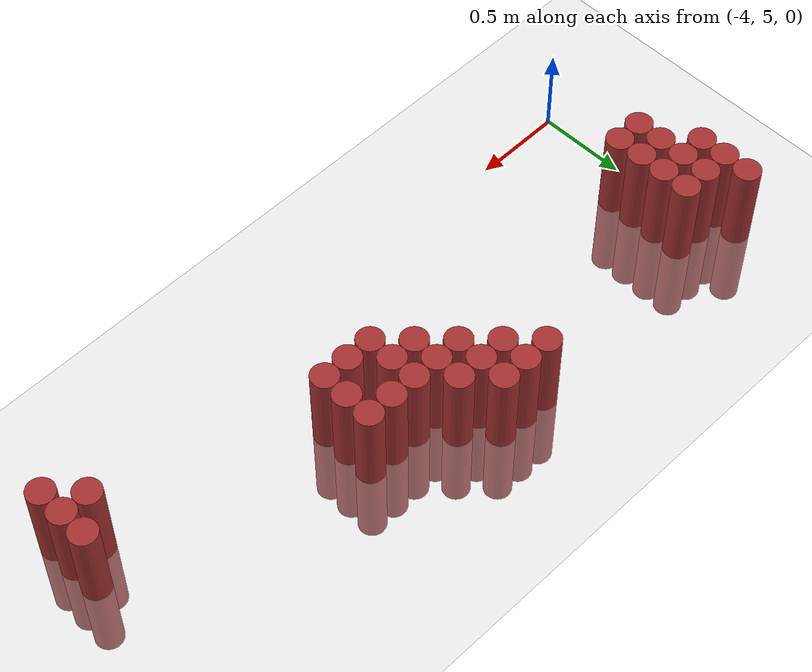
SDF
<sdf version="1.6">
 <world name="default">
  <model name="ground_plane">
   <static>1</static>
   <link name="link">
    <collision name="collision">
     <geometry><plane><normal>0 0 1</normal><size>100 100</size></plane></geometry>
     <surface><friction><ode><mu>100</mu><mu2>50</mu2></ode></friction></surface>
    </collision>
    <visual name="visual">
     <cast_shadows>0</cast_shadows>
     <geometry><plane><normal>0 0 1</normal><size>100 100</size></plane></geometry>
     <material>
      <script><uri>file://media/materials/scripts/gazebo.material</uri><name>Gazebo/Grey</name></script>
     </material>
    </visual>
   </link>
  </model>
  <model name="unit_cylinder_152">
   <static>1</static>
   <pose>-4.125000 5.925000 0.000000 0.000000 0.000000 0.000000</pose>
   <link name="link">
    <inertial>
     <mass>1</mass>
     <inertia><ixx>0.145833</ixx><ixy>0</ixy><ixz>0</ixz><iyy>0.145833</iyy><iyz>0</iyz><izz>0.125</izz></inertia>
    </inertial>
    <collision name="collision">
     <geometry><cylinder><radius>0.075000</radius><length>1</length></cylinder></geometry>
    </collision>
    <visual name="visual">
     <geometry><cylinder><radius>0.075000</radius><length>1</length></cylinder></geometry>
     <material>
      <ambient>0.648000 0.192000 0.192000 1</ambient>
      <diffuse>0.648000 0.192000 0.192000 1</diffuse>
     </material>
     <material>
      <script><name>Gazebo/Grey</name><uri>file://media/materials/scripts/gazebo.material</uri></script>
     </material>
    </visual>
    <sensor name="sensor_contact" type="contact"><contact><collision>collision</collision></contact></sensor>
   </link>
   <plugin filename="gz-sim-touchplugin-system" name="gz::sim::systems::TouchPlugin">
    <target>robot</target>
    <namespace>robot</namespace>
    <time>0.001</time>
    <enabled>true</enabled>
   </plugin>
  </model>
  <model name="unit_cylinder_153">
   <static>1</static>
   <pose>-4.125000 6.075000 0.000000 0.000000 0.000000 0.000000</pose>
   <link name="link">
    <inertial>
     <mass>1</mass>
     <inertia><ixx>0.145833</ixx><ixy>0</ixy><ixz>0</ixz><iyy>0.145833</iyy><iyz>0</iyz><izz>0.125</izz></inertia>
    </inertial>
    <collision name="collision">
     <geometry><cylinder><radius>0.075000</radius><length>1</length></cylinder></geometry>
    </collision>
    <visual name="visual">
     <geometry><cylinder><radius>0.075000</radius><length>1</length></cylinder></geometry>
     <material>
      <ambient>0.648000 0.192000 0.192000 1</ambient>
      <diffuse>0.648000 0.192000 0.192000 1</diffuse>
     </material>
     <material>
      <script><name>Gazebo/Grey</name><uri>file://media/materials/scripts/gazebo.material</uri></script>
     </material>
    </visual>
    <sensor name="sensor_contact" type="contact"><contact><collision>collision</collision></contact></sensor>
   </link>
   <plugin filename="gz-sim-touchplugin-system" name="gz::sim::systems::TouchPlugin">
    <target>robot</target>
    <namespace>robot</namespace>
    <time>0.001</time>
    <enabled>true</enabled>
   </plugin>
  </model>
  <model name="unit_cylinder_154">
   <static>1</static>
   <pose>-4.125000 6.225000 0.000000 0.000000 0.000000 0.000000</pose>
   <link name="link">
    <inertial>
     <mass>1</mass>
     <inertia><ixx>0.145833</ixx><ixy>0</ixy><ixz>0</ixz><iyy>0.145833</iyy><iyz>0</iyz><izz>0.125</izz></inertia>
    </inertial>
    <collision name="collision">
     <geometry><cylinder><radius>0.075000</radius><length>1</length></cylinder></geometry>
    </collision>
    <visual name="visual">
     <geometry><cylinder><radius>0.075000</radius><length>1</length></cylinder></geometry>
     <material>
      <ambient>0.648000 0.192000 0.192000 1</ambient>
      <diffuse>0.648000 0.192000 0.192000 1</diffuse>
     </material>
     <material>
      <script><name>Gazebo/Grey</name><uri>file://media/materials/scripts/gazebo.material</uri></script>
     </material>
    </visual>
    <sensor name="sensor_contact" type="contact"><contact><collision>collision</collision></contact></sensor>
   </link>
   <plugin filename="gz-sim-touchplugin-system" name="gz::sim::systems::TouchPlugin">
    <target>robot</target>
    <namespace>robot</namespace>
    <time>0.001</time>
    <enabled>true</enabled>
   </plugin>
  </model>
  <model name="unit_cylinder_158">
   <static>1</static>
   <pose>-3.975000 5.625000 0.000000 0.000000 0.000000 0.000000</pose>
   <link name="link">
    <inertial>
     <mass>1</mass>
     <inertia><ixx>0.145833</ixx><ixy>0</ixy><ixz>0</ixz><iyy>0.145833</iyy><iyz>0</iyz><izz>0.125</izz></inertia>
    </inertial>
    <collision name="collision">
     <geometry><cylinder><radius>0.075000</radius><length>1</length></cylinder></geometry>
    </collision>
    <visual name="visual">
     <geometry><cylinder><radius>0.075000</radius><length>1</length></cylinder></geometry>
     <material>
      <ambient>0.648000 0.192000 0.192000 1</ambient>
      <diffuse>0.648000 0.192000 0.192000 1</diffuse>
     </material>
     <material>
      <script><name>Gazebo/Grey</name><uri>file://media/materials/scripts/gazebo.material</uri></script>
     </material>
    </visual>
    <sensor name="sensor_contact" type="contact"><contact><collision>collision</collision></contact></sensor>
   </link>
   <plugin filename="gz-sim-touchplugin-system" name="gz::sim::systems::TouchPlugin">
    <target>robot</target>
    <namespace>robot</namespace>
    <time>0.001</time>
    <enabled>true</enabled>
   </plugin>
  </model>
  <model name="unit_cylinder_159">
   <static>1</static>
   <pose>-3.975000 5.775000 0.000000 0.000000 0.000000 0.000000</pose>
   <link name="link">
    <inertial>
     <mass>1</mass>
     <inertia><ixx>0.145833</ixx><ixy>0</ixy><ixz>0</ixz><iyy>0.145833</iyy><iyz>0</iyz><izz>0.125</izz></inertia>
    </inertial>
    <collision name="collision">
     <geometry><cylinder><radius>0.075000</radius><length>1</length></cylinder></geometry>
    </collision>
    <visual name="visual">
     <geometry><cylinder><radius>0.075000</radius><length>1</length></cylinder></geometry>
     <material>
      <ambient>0.648000 0.192000 0.192000 1</ambient>
      <diffuse>0.648000 0.192000 0.192000 1</diffuse>
     </material>
     <material>
      <script><name>Gazebo/Grey</name><uri>file://media/materials/scripts/gazebo.material</uri></script>
     </material>
    </visual>
    <sensor name="sensor_contact" type="contact"><contact><collision>collision</collision></contact></sensor>
   </link>
   <plugin filename="gz-sim-touchplugin-system" name="gz::sim::systems::TouchPlugin">
    <target>robot</target>
    <namespace>robot</namespace>
    <time>0.001</time>
    <enabled>true</enabled>
   </plugin>
  </model>
  <model name="unit_cylinder_160">
   <static>1</static>
   <pose>-3.975000 5.925000 0.000000 0.000000 0.000000 0.000000</pose>
   <link name="link">
    <inertial>
     <mass>1</mass>
     <inertia><ixx>0.145833</ixx><ixy>0</ixy><ixz>0</ixz><iyy>0.145833</iyy><iyz>0</iyz><izz>0.125</izz></inertia>
    </inertial>
    <collision name="collision">
     <geometry><cylinder><radius>0.075000</radius><length>1</length></cylinder></geometry>
    </collision>
    <visual name="visual">
     <geometry><cylinder><radius>0.075000</radius><length>1</length></cylinder></geometry>
     <material>
      <ambient>0.648000 0.192000 0.192000 1</ambient>
      <diffuse>0.648000 0.192000 0.192000 1</diffuse>
     </material>
     <material>
      <script><name>Gazebo/Grey</name><uri>file://media/materials/scripts/gazebo.material</uri></script>
     </material>
    </visual>
    <sensor name="sensor_contact" type="contact"><contact><collision>collision</collision></contact></sensor>
   </link>
   <plugin filename="gz-sim-touchplugin-system" name="gz::sim::systems::TouchPlugin">
    <target>robot</target>
    <namespace>robot</namespace>
    <time>0.001</time>
    <enabled>true</enabled>
   </plugin>
  </model>
  <model name="unit_cylinder_161">
   <static>1</static>
   <pose>-3.975000 6.075000 0.000000 0.000000 0.000000 0.000000</pose>
   <link name="link">
    <inertial>
     <mass>1</mass>
     <inertia><ixx>0.145833</ixx><ixy>0</ixy><ixz>0</ixz><iyy>0.145833</iyy><iyz>0</iyz><izz>0.125</izz></inertia>
    </inertial>
    <collision name="collision">
     <geometry><cylinder><radius>0.075000</radius><length>1</length></cylinder></geometry>
    </collision>
    <visual name="visual">
     <geometry><cylinder><radius>0.075000</radius><length>1</length></cylinder></geometry>
     <material>
      <ambient>0.648000 0.192000 0.192000 1</ambient>
      <diffuse>0.648000 0.192000 0.192000 1</diffuse>
     </material>
     <material>
      <script><name>Gazebo/Grey</name><uri>file://media/materials/scripts/gazebo.material</uri></script>
     </material>
    </visual>
    <sensor name="sensor_contact" type="contact"><contact><collision>collision</collision></contact></sensor>
   </link>
   <plugin filename="gz-sim-touchplugin-system" name="gz::sim::systems::TouchPlugin">
    <target>robot</target>
    <namespace>robot</namespace>
    <time>0.001</time>
    <enabled>true</enabled>
   </plugin>
  </model>
  <model name="unit_cylinder_164">
   <static>1</static>
   <pose>-3.825000 5.625000 0.000000 0.000000 0.000000 0.000000</pose>
   <link name="link">
    <inertial>
     <mass>1</mass>
     <inertia><ixx>0.145833</ixx><ixy>0</ixy><ixz>0</ixz><iyy>0.145833</iyy><iyz>0</iyz><izz>0.125</izz></inertia>
    </inertial>
    <collision name="collision">
     <geometry><cylinder><radius>0.075000</radius><length>1</length></cylinder></geometry>
    </collision>
    <visual name="visual">
     <geometry><cylinder><radius>0.075000</radius><length>1</length></cylinder></geometry>
     <material>
      <ambient>0.648000 0.192000 0.192000 1</ambient>
      <diffuse>0.648000 0.192000 0.192000 1</diffuse>
     </material>
     <material>
      <script><name>Gazebo/Grey</name><uri>file://media/materials/scripts/gazebo.material</uri></script>
     </material>
    </visual>
    <sensor name="sensor_contact" type="contact"><contact><collision>collision</collision></contact></sensor>
   </link>
   <plugin filename="gz-sim-touchplugin-system" name="gz::sim::systems::TouchPlugin">
    <target>robot</target>
    <namespace>robot</namespace>
    <time>0.001</time>
    <enabled>true</enabled>
   </plugin>
  </model>
  <model name="unit_cylinder_165">
   <static>1</static>
   <pose>-3.825000 5.775000 0.000000 0.000000 0.000000 0.000000</pose>
   <link name="link">
    <inertial>
     <mass>1</mass>
     <inertia><ixx>0.145833</ixx><ixy>0</ixy><ixz>0</ixz><iyy>0.145833</iyy><iyz>0</iyz><izz>0.125</izz></inertia>
    </inertial>
    <collision name="collision">
     <geometry><cylinder><radius>0.075000</radius><length>1</length></cylinder></geometry>
    </collision>
    <visual name="visual">
     <geometry><cylinder><radius>0.075000</radius><length>1</length></cylinder></geometry>
     <material>
      <ambient>0.648000 0.192000 0.192000 1</ambient>
      <diffuse>0.648000 0.192000 0.192000 1</diffuse>
     </material>
     <material>
      <script><name>Gazebo/Grey</name><uri>file://media/materials/scripts/gazebo.material</uri></script>
     </material>
    </visual>
    <sensor name="sensor_contact" type="contact"><contact><collision>collision</collision></contact></sensor>
   </link>
   <plugin filename="gz-sim-touchplugin-system" name="gz::sim::systems::TouchPlugin">
    <target>robot</target>
    <namespace>robot</namespace>
    <time>0.001</time>
    <enabled>true</enabled>
   </plugin>
  </model>
  <model name="unit_cylinder_166">
   <static>1</static>
   <pose>-3.825000 5.925000 0.000000 0.000000 0.000000 0.000000</pose>
   <link name="link">
    <inertial>
     <mass>1</mass>
     <inertia><ixx>0.145833</ixx><ixy>0</ixy><ixz>0</ixz><iyy>0.145833</iyy><iyz>0</iyz><izz>0.125</izz></inertia>
    </inertial>
    <collision name="collision">
     <geometry><cylinder><radius>0.075000</radius><length>1</length></cylinder></geometry>
    </collision>
    <visual name="visual">
     <geometry><cylinder><radius>0.075000</radius><length>1</length></cylinder></geometry>
     <material>
      <ambient>0.648000 0.192000 0.192000 1</ambient>
      <diffuse>0.648000 0.192000 0.192000 1</diffuse>
     </material>
     <material>
      <script><name>Gazebo/Grey</name><uri>file://media/materials/scripts/gazebo.material</uri></script>
     </material>
    </visual>
    <sensor name="sensor_contact" type="contact"><contact><collision>collision</collision></contact></sensor>
   </link>
   <plugin filename="gz-sim-touchplugin-system" name="gz::sim::systems::TouchPlugin">
    <target>robot</target>
    <namespace>robot</namespace>
    <time>0.001</time>
    <enabled>true</enabled>
   </plugin>
  </model>
  <model name="unit_cylinder_167">
   <static>1</static>
   <pose>-3.825000 6.075000 0.000000 0.000000 0.000000 0.000000</pose>
   <link name="link">
    <inertial>
     <mass>1</mass>
     <inertia><ixx>0.145833</ixx><ixy>0</ixy><ixz>0</ixz><iyy>0.145833</iyy><iyz>0</iyz><izz>0.125</izz></inertia>
    </inertial>
    <collision name="collision">
     <geometry><cylinder><radius>0.075000</radius><length>1</length></cylinder></geometry>
    </collision>
    <visual name="visual">
     <geometry><cylinder><radius>0.075000</radius><length>1</length></cylinder></geometry>
     <material>
      <ambient>0.648000 0.192000 0.192000 1</ambient>
      <diffuse>0.648000 0.192000 0.192000 1</diffuse>
     </material>
     <material>
      <script><name>Gazebo/Grey</name><uri>file://media/materials/scripts/gazebo.material</uri></script>
     </material>
    </visual>
    <sensor name="sensor_contact" type="contact"><contact><collision>collision</collision></contact></sensor>
   </link>
   <plugin filename="gz-sim-touchplugin-system" name="gz::sim::systems::TouchPlugin">
    <target>robot</target>
    <namespace>robot</namespace>
    <time>0.001</time>
    <enabled>true</enabled>
   </plugin>
  </model>
  <model name="unit_cylinder_187">
   <static>1</static>
   <pose>-2.625000 6.225000 0.000000 0.000000 0.000000 0.000000</pose>
   <link name="link">
    <inertial>
     <mass>1</mass>
     <inertia><ixx>0.145833</ixx><ixy>0</ixy><ixz>0</ixz><iyy>0.145833</iyy><iyz>0</iyz><izz>0.125</izz></inertia>
    </inertial>
    <collision name="collision">
     <geometry><cylinder><radius>0.075000</radius><length>1</length></cylinder></geometry>
    </collision>
    <visual name="visual">
     <geometry><cylinder><radius>0.075000</radius><length>1</length></cylinder></geometry>
     <material>
      <ambient>0.648000 0.192000 0.192000 1</ambient>
      <diffuse>0.648000 0.192000 0.192000 1</diffuse>
     </material>
     <material>
      <script><name>Gazebo/Grey</name><uri>file://media/materials/scripts/gazebo.material</uri></script>
     </material>
    </visual>
    <sensor name="sensor_contact" type="contact"><contact><collision>collision</collision></contact></sensor>
   </link>
   <plugin filename="gz-sim-touchplugin-system" name="gz::sim::systems::TouchPlugin">
    <target>robot</target>
    <namespace>robot</namespace>
    <time>0.001</time>
    <enabled>true</enabled>
   </plugin>
  </model>
  <model name="unit_cylinder_198">
   <static>1</static>
   <pose>-2.475000 6.075000 0.000000 0.000000 0.000000 0.000000</pose>
   <link name="link">
    <inertial>
     <mass>1</mass>
     <inertia><ixx>0.145833</ixx><ixy>0</ixy><ixz>0</ixz><iyy>0.145833</iyy><iyz>0</iyz><izz>0.125</izz></inertia>
    </inertial>
    <collision name="collision">
     <geometry><cylinder><radius>0.075000</radius><length>1</length></cylinder></geometry>
    </collision>
    <visual name="visual">
     <geometry><cylinder><radius>0.075000</radius><length>1</length></cylinder></geometry>
     <material>
      <ambient>0.648000 0.192000 0.192000 1</ambient>
      <diffuse>0.648000 0.192000 0.192000 1</diffuse>
     </material>
     <material>
      <script><name>Gazebo/Grey</name><uri>file://media/materials/scripts/gazebo.material</uri></script>
     </material>
    </visual>
    <sensor name="sensor_contact" type="contact"><contact><collision>collision</collision></contact></sensor>
   </link>
   <plugin filename="gz-sim-touchplugin-system" name="gz::sim::systems::TouchPlugin">
    <target>robot</target>
    <namespace>robot</namespace>
    <time>0.001</time>
    <enabled>true</enabled>
   </plugin>
  </model>
  <model name="unit_cylinder_199">
   <static>1</static>
   <pose>-2.475000 6.225000 0.000000 0.000000 0.000000 0.000000</pose>
   <link name="link">
    <inertial>
     <mass>1</mass>
     <inertia><ixx>0.145833</ixx><ixy>0</ixy><ixz>0</ixz><iyy>0.145833</iyy><iyz>0</iyz><izz>0.125</izz></inertia>
    </inertial>
    <collision name="collision">
     <geometry><cylinder><radius>0.075000</radius><length>1</length></cylinder></geometry>
    </collision>
    <visual name="visual">
     <geometry><cylinder><radius>0.075000</radius><length>1</length></cylinder></geometry>
     <material>
      <ambient>0.648000 0.192000 0.192000 1</ambient>
      <diffuse>0.648000 0.192000 0.192000 1</diffuse>
     </material>
     <material>
      <script><name>Gazebo/Grey</name><uri>file://media/materials/scripts/gazebo.material</uri></script>
     </material>
    </visual>
    <sensor name="sensor_contact" type="contact"><contact><collision>collision</collision></contact></sensor>
   </link>
   <plugin filename="gz-sim-touchplugin-system" name="gz::sim::systems::TouchPlugin">
    <target>robot</target>
    <namespace>robot</namespace>
    <time>0.001</time>
    <enabled>true</enabled>
   </plugin>
  </model>
  <model name="unit_cylinder_206">
   <static>1</static>
   <pose>-2.325000 5.925000 0.000000 0.000000 0.000000 0.000000</pose>
   <link name="link">
    <inertial>
     <mass>1</mass>
     <inertia><ixx>0.145833</ixx><ixy>0</ixy><ixz>0</ixz><iyy>0.145833</iyy><iyz>0</iyz><izz>0.125</izz></inertia>
    </inertial>
    <collision name="collision">
     <geometry><cylinder><radius>0.075000</radius><length>1</length></cylinder></geometry>
    </collision>
    <visual name="visual">
     <geometry><cylinder><radius>0.075000</radius><length>1</length></cylinder></geometry>
     <material>
      <ambient>0.648000 0.192000 0.192000 1</ambient>
      <diffuse>0.648000 0.192000 0.192000 1</diffuse>
     </material>
     <material>
      <script><name>Gazebo/Grey</name><uri>file://media/materials/scripts/gazebo.material</uri></script>
     </material>
    </visual>
    <sensor name="sensor_contact" type="contact"><contact><collision>collision</collision></contact></sensor>
   </link>
   <plugin filename="gz-sim-touchplugin-system" name="gz::sim::systems::TouchPlugin">
    <target>robot</target>
    <namespace>robot</namespace>
    <time>0.001</time>
    <enabled>true</enabled>
   </plugin>
  </model>
  <model name="unit_cylinder_207">
   <static>1</static>
   <pose>-2.325000 6.075000 0.000000 0.000000 0.000000 0.000000</pose>
   <link name="link">
    <inertial>
     <mass>1</mass>
     <inertia><ixx>0.145833</ixx><ixy>0</ixy><ixz>0</ixz><iyy>0.145833</iyy><iyz>0</iyz><izz>0.125</izz></inertia>
    </inertial>
    <collision name="collision">
     <geometry><cylinder><radius>0.075000</radius><length>1</length></cylinder></geometry>
    </collision>
    <visual name="visual">
     <geometry><cylinder><radius>0.075000</radius><length>1</length></cylinder></geometry>
     <material>
      <ambient>0.648000 0.192000 0.192000 1</ambient>
      <diffuse>0.648000 0.192000 0.192000 1</diffuse>
     </material>
     <material>
      <script><name>Gazebo/Grey</name><uri>file://media/materials/scripts/gazebo.material</uri></script>
     </material>
    </visual>
    <sensor name="sensor_contact" type="contact"><contact><collision>collision</collision></contact></sensor>
   </link>
   <plugin filename="gz-sim-touchplugin-system" name="gz::sim::systems::TouchPlugin">
    <target>robot</target>
    <namespace>robot</namespace>
    <time>0.001</time>
    <enabled>true</enabled>
   </plugin>
  </model>
  <model name="unit_cylinder_208">
   <static>1</static>
   <pose>-2.325000 6.225000 0.000000 0.000000 0.000000 0.000000</pose>
   <link name="link">
    <inertial>
     <mass>1</mass>
     <inertia><ixx>0.145833</ixx><ixy>0</ixy><ixz>0</ixz><iyy>0.145833</iyy><iyz>0</iyz><izz>0.125</izz></inertia>
    </inertial>
    <collision name="collision">
     <geometry><cylinder><radius>0.075000</radius><length>1</length></cylinder></geometry>
    </collision>
    <visual name="visual">
     <geometry><cylinder><radius>0.075000</radius><length>1</length></cylinder></geometry>
     <material>
      <ambient>0.648000 0.192000 0.192000 1</ambient>
      <diffuse>0.648000 0.192000 0.192000 1</diffuse>
     </material>
     <material>
      <script><name>Gazebo/Grey</name><uri>file://media/materials/scripts/gazebo.material</uri></script>
     </material>
    </visual>
    <sensor name="sensor_contact" type="contact"><contact><collision>collision</collision></contact></sensor>
   </link>
   <plugin filename="gz-sim-touchplugin-system" name="gz::sim::systems::TouchPlugin">
    <target>robot</target>
    <namespace>robot</namespace>
    <time>0.001</time>
    <enabled>true</enabled>
   </plugin>
  </model>
  <model name="unit_cylinder_215">
   <static>1</static>
   <pose>-2.175000 5.775000 0.000000 0.000000 0.000000 0.000000</pose>
   <link name="link">
    <inertial>
     <mass>1</mass>
     <inertia><ixx>0.145833</ixx><ixy>0</ixy><ixz>0</ixz><iyy>0.145833</iyy><iyz>0</iyz><izz>0.125</izz></inertia>
    </inertial>
    <collision name="collision">
     <geometry><cylinder><radius>0.075000</radius><length>1</length></cylinder></geometry>
    </collision>
    <visual name="visual">
     <geometry><cylinder><radius>0.075000</radius><length>1</length></cylinder></geometry>
     <material>
      <ambient>0.648000 0.192000 0.192000 1</ambient>
      <diffuse>0.648000 0.192000 0.192000 1</diffuse>
     </material>
     <material>
      <script><name>Gazebo/Grey</name><uri>file://media/materials/scripts/gazebo.material</uri></script>
     </material>
    </visual>
    <sensor name="sensor_contact" type="contact"><contact><collision>collision</collision></contact></sensor>
   </link>
   <plugin filename="gz-sim-touchplugin-system" name="gz::sim::systems::TouchPlugin">
    <target>robot</target>
    <namespace>robot</namespace>
    <time>0.001</time>
    <enabled>true</enabled>
   </plugin>
  </model>
  <model name="unit_cylinder_216">
   <static>1</static>
   <pose>-2.175000 5.925000 0.000000 0.000000 0.000000 0.000000</pose>
   <link name="link">
    <inertial>
     <mass>1</mass>
     <inertia><ixx>0.145833</ixx><ixy>0</ixy><ixz>0</ixz><iyy>0.145833</iyy><iyz>0</iyz><izz>0.125</izz></inertia>
    </inertial>
    <collision name="collision">
     <geometry><cylinder><radius>0.075000</radius><length>1</length></cylinder></geometry>
    </collision>
    <visual name="visual">
     <geometry><cylinder><radius>0.075000</radius><length>1</length></cylinder></geometry>
     <material>
      <ambient>0.648000 0.192000 0.192000 1</ambient>
      <diffuse>0.648000 0.192000 0.192000 1</diffuse>
     </material>
     <material>
      <script><name>Gazebo/Grey</name><uri>file://media/materials/scripts/gazebo.material</uri></script>
     </material>
    </visual>
    <sensor name="sensor_contact" type="contact"><contact><collision>collision</collision></contact></sensor>
   </link>
   <plugin filename="gz-sim-touchplugin-system" name="gz::sim::systems::TouchPlugin">
    <target>robot</target>
    <namespace>robot</namespace>
    <time>0.001</time>
    <enabled>true</enabled>
   </plugin>
  </model>
  <model name="unit_cylinder_217">
   <static>1</static>
   <pose>-2.175000 6.075000 0.000000 0.000000 0.000000 0.000000</pose>
   <link name="link">
    <inertial>
     <mass>1</mass>
     <inertia><ixx>0.145833</ixx><ixy>0</ixy><ixz>0</ixz><iyy>0.145833</iyy><iyz>0</iyz><izz>0.125</izz></inertia>
    </inertial>
    <collision name="collision">
     <geometry><cylinder><radius>0.075000</radius><length>1</length></cylinder></geometry>
    </collision>
    <visual name="visual">
     <geometry><cylinder><radius>0.075000</radius><length>1</length></cylinder></geometry>
     <material>
      <ambient>0.648000 0.192000 0.192000 1</ambient>
      <diffuse>0.648000 0.192000 0.192000 1</diffuse>
     </material>
     <material>
      <script><name>Gazebo/Grey</name><uri>file://media/materials/scripts/gazebo.material</uri></script>
     </material>
    </visual>
    <sensor name="sensor_contact" type="contact"><contact><collision>collision</collision></contact></sensor>
   </link>
   <plugin filename="gz-sim-touchplugin-system" name="gz::sim::systems::TouchPlugin">
    <target>robot</target>
    <namespace>robot</namespace>
    <time>0.001</time>
    <enabled>true</enabled>
   </plugin>
  </model>
  <model name="unit_cylinder_221">
   <static>1</static>
   <pose>-2.025000 5.625000 0.000000 0.000000 0.000000 0.000000</pose>
   <link name="link">
    <inertial>
     <mass>1</mass>
     <inertia><ixx>0.145833</ixx><ixy>0</ixy><ixz>0</ixz><iyy>0.145833</iyy><iyz>0</iyz><izz>0.125</izz></inertia>
    </inertial>
    <collision name="collision">
     <geometry><cylinder><radius>0.075000</radius><length>1</length></cylinder></geometry>
    </collision>
    <visual name="visual">
     <geometry><cylinder><radius>0.075000</radius><length>1</length></cylinder></geometry>
     <material>
      <ambient>0.648000 0.192000 0.192000 1</ambient>
      <diffuse>0.648000 0.192000 0.192000 1</diffuse>
     </material>
     <material>
      <script><name>Gazebo/Grey</name><uri>file://media/materials/scripts/gazebo.material</uri></script>
     </material>
    </visual>
    <sensor name="sensor_contact" type="contact"><contact><collision>collision</collision></contact></sensor>
   </link>
   <plugin filename="gz-sim-touchplugin-system" name="gz::sim::systems::TouchPlugin">
    <target>robot</target>
    <namespace>robot</namespace>
    <time>0.001</time>
    <enabled>true</enabled>
   </plugin>
  </model>
  <model name="unit_cylinder_222">
   <static>1</static>
   <pose>-2.025000 5.775000 0.000000 0.000000 0.000000 0.000000</pose>
   <link name="link">
    <inertial>
     <mass>1</mass>
     <inertia><ixx>0.145833</ixx><ixy>0</ixy><ixz>0</ixz><iyy>0.145833</iyy><iyz>0</iyz><izz>0.125</izz></inertia>
    </inertial>
    <collision name="collision">
     <geometry><cylinder><radius>0.075000</radius><length>1</length></cylinder></geometry>
    </collision>
    <visual name="visual">
     <geometry><cylinder><radius>0.075000</radius><length>1</length></cylinder></geometry>
     <material>
      <ambient>0.648000 0.192000 0.192000 1</ambient>
      <diffuse>0.648000 0.192000 0.192000 1</diffuse>
     </material>
     <material>
      <script><name>Gazebo/Grey</name><uri>file://media/materials/scripts/gazebo.material</uri></script>
     </material>
    </visual>
    <sensor name="sensor_contact" type="contact"><contact><collision>collision</collision></contact></sensor>
   </link>
   <plugin filename="gz-sim-touchplugin-system" name="gz::sim::systems::TouchPlugin">
    <target>robot</target>
    <namespace>robot</namespace>
    <time>0.001</time>
    <enabled>true</enabled>
   </plugin>
  </model>
  <model name="unit_cylinder_223">
   <static>1</static>
   <pose>-2.025000 5.925000 0.000000 0.000000 0.000000 0.000000</pose>
   <link name="link">
    <inertial>
     <mass>1</mass>
     <inertia><ixx>0.145833</ixx><ixy>0</ixy><ixz>0</ixz><iyy>0.145833</iyy><iyz>0</iyz><izz>0.125</izz></inertia>
    </inertial>
    <collision name="collision">
     <geometry><cylinder><radius>0.075000</radius><length>1</length></cylinder></geometry>
    </collision>
    <visual name="visual">
     <geometry><cylinder><radius>0.075000</radius><length>1</length></cylinder></geometry>
     <material>
      <ambient>0.648000 0.192000 0.192000 1</ambient>
      <diffuse>0.648000 0.192000 0.192000 1</diffuse>
     </material>
     <material>
      <script><name>Gazebo/Grey</name><uri>file://media/materials/scripts/gazebo.material</uri></script>
     </material>
    </visual>
    <sensor name="sensor_contact" type="contact"><contact><collision>collision</collision></contact></sensor>
   </link>
   <plugin filename="gz-sim-touchplugin-system" name="gz::sim::systems::TouchPlugin">
    <target>robot</target>
    <namespace>robot</namespace>
    <time>0.001</time>
    <enabled>true</enabled>
   </plugin>
  </model>
  <model name="unit_cylinder_227">
   <static>1</static>
   <pose>-1.875000 5.625000 0.000000 0.000000 0.000000 0.000000</pose>
   <link name="link">
    <inertial>
     <mass>1</mass>
     <inertia><ixx>0.145833</ixx><ixy>0</ixy><ixz>0</ixz><iyy>0.145833</iyy><iyz>0</iyz><izz>0.125</izz></inertia>
    </inertial>
    <collision name="collision">
     <geometry><cylinder><radius>0.075000</radius><length>1</length></cylinder></geometry>
    </collision>
    <visual name="visual">
     <geometry><cylinder><radius>0.075000</radius><length>1</length></cylinder></geometry>
     <material>
      <ambient>0.648000 0.192000 0.192000 1</ambient>
      <diffuse>0.648000 0.192000 0.192000 1</diffuse>
     </material>
     <material>
      <script><name>Gazebo/Grey</name><uri>file://media/materials/scripts/gazebo.material</uri></script>
     </material>
    </visual>
    <sensor name="sensor_contact" type="contact"><contact><collision>collision</collision></contact></sensor>
   </link>
   <plugin filename="gz-sim-touchplugin-system" name="gz::sim::systems::TouchPlugin">
    <target>robot</target>
    <namespace>robot</namespace>
    <time>0.001</time>
    <enabled>true</enabled>
   </plugin>
  </model>
  <model name="unit_cylinder_228">
   <static>1</static>
   <pose>-1.875000 5.925000 0.000000 0.000000 0.000000 0.000000</pose>
   <link name="link">
    <inertial>
     <mass>1</mass>
     <inertia><ixx>0.145833</ixx><ixy>0</ixy><ixz>0</ixz><iyy>0.145833</iyy><iyz>0</iyz><izz>0.125</izz></inertia>
    </inertial>
    <collision name="collision">
     <geometry><cylinder><radius>0.075000</radius><length>1</length></cylinder></geometry>
    </collision>
    <visual name="visual">
     <geometry><cylinder><radius>0.075000</radius><length>1</length></cylinder></geometry>
     <material>
      <ambient>0.648000 0.192000 0.192000 1</ambient>
      <diffuse>0.648000 0.192000 0.192000 1</diffuse>
     </material>
     <material>
      <script><name>Gazebo/Grey</name><uri>file://media/materials/scripts/gazebo.material</uri></script>
     </material>
    </visual>
    <sensor name="sensor_contact" type="contact"><contact><collision>collision</collision></contact></sensor>
   </link>
   <plugin filename="gz-sim-touchplugin-system" name="gz::sim::systems::TouchPlugin">
    <target>robot</target>
    <namespace>robot</namespace>
    <time>0.001</time>
    <enabled>true</enabled>
   </plugin>
  </model>
  <model name="unit_cylinder_231">
   <static>1</static>
   <pose>-1.725000 5.625000 0.000000 0.000000 0.000000 0.000000</pose>
   <link name="link">
    <inertial>
     <mass>1</mass>
     <inertia><ixx>0.145833</ixx><ixy>0</ixy><ixz>0</ixz><iyy>0.145833</iyy><iyz>0</iyz><izz>0.125</izz></inertia>
    </inertial>
    <collision name="collision">
     <geometry><cylinder><radius>0.075000</radius><length>1</length></cylinder></geometry>
    </collision>
    <visual name="visual">
     <geometry><cylinder><radius>0.075000</radius><length>1</length></cylinder></geometry>
     <material>
      <ambient>0.648000 0.192000 0.192000 1</ambient>
      <diffuse>0.648000 0.192000 0.192000 1</diffuse>
     </material>
     <material>
      <script><name>Gazebo/Grey</name><uri>file://media/materials/scripts/gazebo.material</uri></script>
     </material>
    </visual>
    <sensor name="sensor_contact" type="contact"><contact><collision>collision</collision></contact></sensor>
   </link>
   <plugin filename="gz-sim-touchplugin-system" name="gz::sim::systems::TouchPlugin">
    <target>robot</target>
    <namespace>robot</namespace>
    <time>0.001</time>
    <enabled>true</enabled>
   </plugin>
  </model>
  <model name="unit_cylinder_232">
   <static>1</static>
   <pose>-1.725000 5.775000 0.000000 0.000000 0.000000 0.000000</pose>
   <link name="link">
    <inertial>
     <mass>1</mass>
     <inertia><ixx>0.145833</ixx><ixy>0</ixy><ixz>0</ixz><iyy>0.145833</iyy><iyz>0</iyz><izz>0.125</izz></inertia>
    </inertial>
    <collision name="collision">
     <geometry><cylinder><radius>0.075000</radius><length>1</length></cylinder></geometry>
    </collision>
    <visual name="visual">
     <geometry><cylinder><radius>0.075000</radius><length>1</length></cylinder></geometry>
     <material>
      <ambient>0.648000 0.192000 0.192000 1</ambient>
      <diffuse>0.648000 0.192000 0.192000 1</diffuse>
     </material>
     <material>
      <script><name>Gazebo/Grey</name><uri>file://media/materials/scripts/gazebo.material</uri></script>
     </material>
    </visual>
    <sensor name="sensor_contact" type="contact"><contact><collision>collision</collision></contact></sensor>
   </link>
   <plugin filename="gz-sim-touchplugin-system" name="gz::sim::systems::TouchPlugin">
    <target>robot</target>
    <namespace>robot</namespace>
    <time>0.001</time>
    <enabled>true</enabled>
   </plugin>
  </model>
  <model name="unit_cylinder_233">
   <static>1</static>
   <pose>-1.725000 5.925000 0.000000 0.000000 0.000000 0.000000</pose>
   <link name="link">
    <inertial>
     <mass>1</mass>
     <inertia><ixx>0.145833</ixx><ixy>0</ixy><ixz>0</ixz><iyy>0.145833</iyy><iyz>0</iyz><izz>0.125</izz></inertia>
    </inertial>
    <collision name="collision">
     <geometry><cylinder><radius>0.075000</radius><length>1</length></cylinder></geometry>
    </collision>
    <visual name="visual">
     <geometry><cylinder><radius>0.075000</radius><length>1</length></cylinder></geometry>
     <material>
      <ambient>0.648000 0.192000 0.192000 1</ambient>
      <diffuse>0.648000 0.192000 0.192000 1</diffuse>
     </material>
     <material>
      <script><name>Gazebo/Grey</name><uri>file://media/materials/scripts/gazebo.material</uri></script>
     </material>
    </visual>
    <sensor name="sensor_contact" type="contact"><contact><collision>collision</collision></contact></sensor>
   </link>
   <plugin filename="gz-sim-touchplugin-system" name="gz::sim::systems::TouchPlugin">
    <target>robot</target>
    <namespace>robot</namespace>
    <time>0.001</time>
    <enabled>true</enabled>
   </plugin>
  </model>
  <model name="unit_cylinder_263">
   <static>1</static>
   <pose>-0.525000 5.325000 0.000000 0.000000 0.000000 0.000000</pose>
   <link name="link">
    <inertial>
     <mass>1</mass>
     <inertia><ixx>0.145833</ixx><ixy>0</ixy><ixz>0</ixz><iyy>0.145833</iyy><iyz>0</iyz><izz>0.125</izz></inertia>
    </inertial>
    <collision name="collision">
     <geometry><cylinder><radius>0.075000</radius><length>1</length></cylinder></geometry>
    </collision>
    <visual name="visual">
     <geometry><cylinder><radius>0.075000</radius><length>1</length></cylinder></geometry>
     <material>
      <ambient>0.648000 0.192000 0.192000 1</ambient>
      <diffuse>0.648000 0.192000 0.192000 1</diffuse>
     </material>
     <material>
      <script><name>Gazebo/Grey</name><uri>file://media/materials/scripts/gazebo.material</uri></script>
     </material>
    </visual>
    <sensor name="sensor_contact" type="contact"><contact><collision>collision</collision></contact></sensor>
   </link>
   <plugin filename="gz-sim-touchplugin-system" name="gz::sim::systems::TouchPlugin">
    <target>robot</target>
    <namespace>robot</namespace>
    <time>0.001</time>
    <enabled>true</enabled>
   </plugin>
  </model>
  <model name="unit_cylinder_266">
   <static>1</static>
   <pose>-0.375000 5.175000 0.000000 0.000000 0.000000 0.000000</pose>
   <link name="link">
    <inertial>
     <mass>1</mass>
     <inertia><ixx>0.145833</ixx><ixy>0</ixy><ixz>0</ixz><iyy>0.145833</iyy><iyz>0</iyz><izz>0.125</izz></inertia>
    </inertial>
    <collision name="collision">
     <geometry><cylinder><radius>0.075000</radius><length>1</length></cylinder></geometry>
    </collision>
    <visual name="visual">
     <geometry><cylinder><radius>0.075000</radius><length>1</length></cylinder></geometry>
     <material>
      <ambient>0.648000 0.192000 0.192000 1</ambient>
      <diffuse>0.648000 0.192000 0.192000 1</diffuse>
     </material>
     <material>
      <script><name>Gazebo/Grey</name><uri>file://media/materials/scripts/gazebo.material</uri></script>
     </material>
    </visual>
    <sensor name="sensor_contact" type="contact"><contact><collision>collision</collision></contact></sensor>
   </link>
   <plugin filename="gz-sim-touchplugin-system" name="gz::sim::systems::TouchPlugin">
    <target>robot</target>
    <namespace>robot</namespace>
    <time>0.001</time>
    <enabled>true</enabled>
   </plugin>
  </model>
  <model name="unit_cylinder_267">
   <static>1</static>
   <pose>-0.375000 5.325000 0.000000 0.000000 0.000000 0.000000</pose>
   <link name="link">
    <inertial>
     <mass>1</mass>
     <inertia><ixx>0.145833</ixx><ixy>0</ixy><ixz>0</ixz><iyy>0.145833</iyy><iyz>0</iyz><izz>0.125</izz></inertia>
    </inertial>
    <collision name="collision">
     <geometry><cylinder><radius>0.075000</radius><length>1</length></cylinder></geometry>
    </collision>
    <visual name="visual">
     <geometry><cylinder><radius>0.075000</radius><length>1</length></cylinder></geometry>
     <material>
      <ambient>0.648000 0.192000 0.192000 1</ambient>
      <diffuse>0.648000 0.192000 0.192000 1</diffuse>
     </material>
     <material>
      <script><name>Gazebo/Grey</name><uri>file://media/materials/scripts/gazebo.material</uri></script>
     </material>
    </visual>
    <sensor name="sensor_contact" type="contact"><contact><collision>collision</collision></contact></sensor>
   </link>
   <plugin filename="gz-sim-touchplugin-system" name="gz::sim::systems::TouchPlugin">
    <target>robot</target>
    <namespace>robot</namespace>
    <time>0.001</time>
    <enabled>true</enabled>
   </plugin>
  </model>
  <model name="unit_cylinder_268">
   <static>1</static>
   <pose>-0.375000 5.475000 0.000000 0.000000 0.000000 0.000000</pose>
   <link name="link">
    <inertial>
     <mass>1</mass>
     <inertia><ixx>0.145833</ixx><ixy>0</ixy><ixz>0</ixz><iyy>0.145833</iyy><iyz>0</iyz><izz>0.125</izz></inertia>
    </inertial>
    <collision name="collision">
     <geometry><cylinder><radius>0.075000</radius><length>1</length></cylinder></geometry>
    </collision>
    <visual name="visual">
     <geometry><cylinder><radius>0.075000</radius><length>1</length></cylinder></geometry>
     <material>
      <ambient>0.648000 0.192000 0.192000 1</ambient>
      <diffuse>0.648000 0.192000 0.192000 1</diffuse>
     </material>
     <material>
      <script><name>Gazebo/Grey</name><uri>file://media/materials/scripts/gazebo.material</uri></script>
     </material>
    </visual>
    <sensor name="sensor_contact" type="contact"><contact><collision>collision</collision></contact></sensor>
   </link>
   <plugin filename="gz-sim-touchplugin-system" name="gz::sim::systems::TouchPlugin">
    <target>robot</target>
    <namespace>robot</namespace>
    <time>0.001</time>
    <enabled>true</enabled>
   </plugin>
  </model>
 </world>
</sdf>
